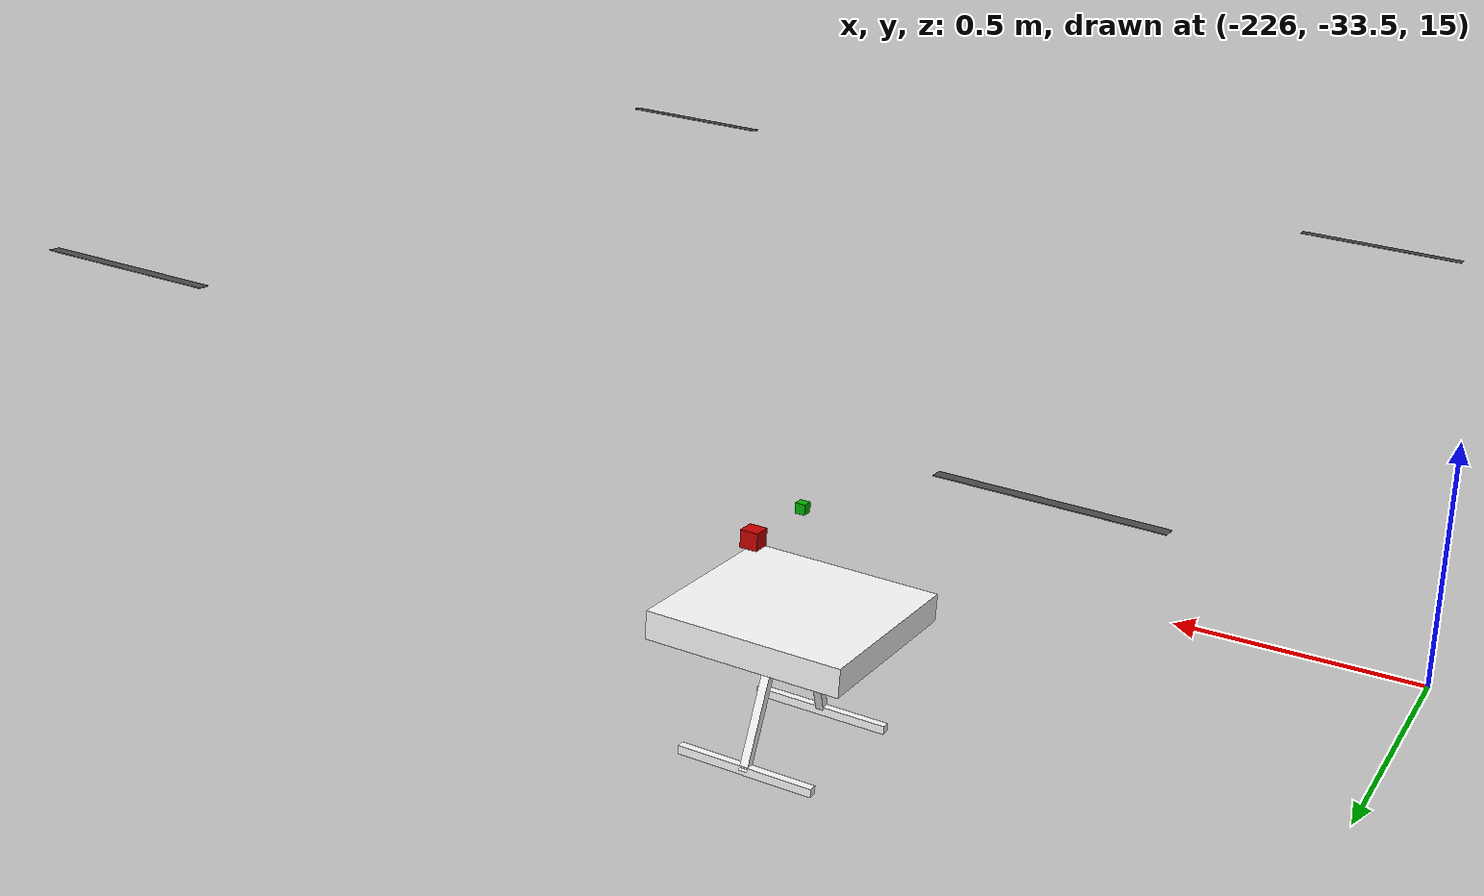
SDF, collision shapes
<?xml version='1.0' encoding='UTF-8'?>
<sdf version="1.9">
  <model name="x500_base_custom">
    <pose>-225.13 -32.65 15.33 0.11 -0.03 0.01</pose>
    <canonical_link>base_link</canonical_link>
    <self_collide>false</self_collide>
    <static>false</static>

    <!-- === BASE LINK (mevcut) === -->
    <link name="base_link">
      <inertial>
        <mass>20.000</mass>
        <inertia>
          <ixx>0.02166666666666667</ixx>
          <ixy>0</ixy>
          <ixz>0</ixz>
          <iyy>0.02166666666666667</iyy>
          <iyz>0</iyz>
          <izz>0.04000000000000001</izz>
        </inertia>
      </inertial>
      <gravity>true</gravity>
      <velocity_decay/>
      <visual name="base_link_visual">
        <pose>0.01 0.016 0 0 0 0</pose>
        <geometry>
          <mesh>
            <scale>0.009 0.013 0.01</scale>
            <uri>model://x500_base_custom/meshes/last.dae</uri>
          </mesh>
        </geometry>
      </visual>

      <!-- motor base görselleri: zaten base_link altında -->
      <visual name="5010_motor_base_0">
        <pose>0.689 0.7535 0.55 0 0 -0.90</pose>
        <geometry>
          <mesh>
            <scale>0.1 0.1 0.1</scale>
            <uri>model://x500_base_custom/meshes/motorbase.dae</uri>
          </mesh>
        </geometry>
      </visual>
      <visual name="5010_motor_base_1">
        <pose>-0.689 0.7535 0.55 0 0 0.90</pose>
        <geometry>
          <mesh>
            <scale>0.1 0.1 0.1</scale>
            <uri>model://x500_base_custom/meshes/motorbase.dae</uri>
          </mesh>
        </geometry>
      </visual>
      <visual name="5010_motor_base_2">
        <pose>0.689 -0.7535 0.55 0 0 -2.10</pose>
        <geometry>
          <mesh>
            <scale>0.1 0.1 0.1</scale>
            <uri>model://x500_base_custom/meshes/motorbase.dae</uri>
          </mesh>
        </geometry>
      </visual>
      <visual name="5010_motor_base_3">
        <pose>-0.689 -0.7535 0.55 0 0 -4.2</pose>
        <geometry>
          <mesh>
            <scale>0.1 0.1 0.1</scale>
            <uri>model://x500_base_custom/meshes/motorbase.dae</uri>
          </mesh>
        </geometry>
      </visual>

      <visual name="NXP_FMUK66_FRONT">
        <pose>0.047 .001 .043 1 0 1.57</pose>
        <cast_shadows>false</cast_shadows>
        <geometry>
          <plane>
            <normal>0 0 1</normal>
            <size>.013 .007</size>
          </plane>
        </geometry>
        <material>
          <diffuse>1.0 1.0 1.0</diffuse>
          <specular>1.0 1.0 1.0</specular>
          <pbr>
            <metal>
              <albedo_map>model://x500_base_custom/materials/textures/nxp.png</albedo_map>
            </metal>
          </pbr>
        </material>
      </visual>
      <visual name="NXP_FMUK66_TOP">
        <pose>-0.023 0 .0515 0 0 -1.57</pose>
        <cast_shadows>false</cast_shadows>
        <geometry>
          <plane>
            <normal>0 0 1</normal>
            <size>.013 .007</size>
          </plane>
        </geometry>
        <material>
          <diffuse>1.0 1.0 1.0</diffuse>
          <specular>1.0 1.0 1.0</specular>
          <pbr>
            <metal>
              <albedo_map>model://x500_base_custom/materials/textures/nxp.png</albedo_map>
            </metal>
          </pbr>
        </material>
      </visual>
      <visual name="RDDRONE_FMUK66_TOP">
        <pose>-.03 0 .0515 0 0 -1.57</pose>
        <cast_shadows>false</cast_shadows>
        <geometry>
          <plane>
            <normal>0 0 1</normal>
            <size>.032 .0034</size>
          </plane>
        </geometry>
        <material>
          <diffuse>1.0 1.0 1.0</diffuse>
          <specular>1.0 1.0 1.0</specular>
          <pbr>
            <metal>
              <albedo_map>model://x500_base_custom/materials/textures/rd.png</albedo_map>
            </metal>
          </pbr>
        </material>
      </visual>

      <!-- base_link collisionlar (mevcut) -->
      <collision name="base_link_collision_0">
        <pose>0 0 .007 0 0 0</pose>
        <geometry>
          <box><size>0.35355339059327373 0.35355339059327373 0.05</size></box>
        </geometry>
        <surface>
          <contact><ode><min_depth>0.001</min_depth><max_vel>0</max_vel></ode></contact>
          <friction><ode/></friction>
        </surface>
      </collision>
      <collision name="base_link_collision_1">
        <pose>0 -0.098 -.123 -0.35 0 0</pose>
        <geometry>
          <box><size>0.015 0.015 0.21</size></box>
        </geometry>
        <surface>
          <contact><ode><min_depth>0.001</min_depth><max_vel>0</max_vel></ode></contact>
          <friction><ode/></friction>
        </surface>
      </collision>
      <collision name="base_link_collision_2">
        <pose>0 0.098 -.123 0.35 0 0</pose>
        <geometry>
          <box><size>0.015 0.015 0.21</size></box>
        </geometry>
        <surface>
          <contact><ode><min_depth>0.001</min_depth><max_vel>0</max_vel></ode></contact>
          <friction><ode/></friction>
        </surface>
      </collision>
      <collision name="base_link_collision_3">
        <pose>0 -0.132 -.2195 0 0 0</pose>
        <geometry>
          <box><size>0.25 0.015 0.015</size></box>
        </geometry>
        <surface>
          <contact><ode><min_depth>0.001</min_depth><max_vel>0</max_vel></ode></contact>
          <friction><ode/></friction>
        </surface>
      </collision>
      <collision name="base_link_collision_4">
        <pose>0 0.132 -.2195 0 0 0</pose>
        <geometry>
          <box><size>0.25 0.015 0.015</size></box>
        </geometry>
        <surface>
          <contact><ode><min_depth>0.001</min_depth><max_vel>0</max_vel></ode></contact>
          <friction><ode/></friction>
        </surface>
      </collision>

      <!-- Sensörler (mevcut) -->
      <sensor name="air_pressure_sensor" type="air_pressure">
        <gz_frame_id>base_link</gz_frame_id>
        <always_on>1</always_on>
        <update_rate>50</update_rate>
        <air_pressure>
          <pressure>
            <noise type="gaussian"><mean>0</mean><stddev>3</stddev></noise>
          </pressure>
        </air_pressure>
      </sensor>

      <sensor name="magnetometer_sensor" type="magnetometer">
        <gz_frame_id>base_link</gz_frame_id>
        <always_on>1</always_on>
        <update_rate>100</update_rate>
        <magnetometer>
          <x><noise type="gaussian"><stddev>0.0001</stddev></noise></x>
          <y><noise type="gaussian"><stddev>0.0001</stddev></noise></y>
          <z><noise type="gaussian"><stddev>0.0001</stddev></noise></z>
        </magnetometer>
      </sensor>

      <sensor name="imu_sensor" type="imu">
        <gz_frame_id>base_link</gz_frame_id>
        <always_on>1</always_on>
        <update_rate>250</update_rate>
        <imu>
          <angular_velocity>
            <x><noise type="gaussian"><mean>0.0</mean><stddev>0.0008726646</stddev></noise></x>
            <y><noise type="gaussian"><mean>0.0</mean><stddev>0.0008726646</stddev></noise></y>
            <z><noise type="gaussian"><mean>0.0</mean><stddev>0.0008726646</stddev></noise></z>
          </angular_velocity>
          <linear_acceleration>
            <x><noise type="gaussian"><mean>0.0</mean><stddev>0.00637</stddev></noise></x>
            <y><noise type="gaussian"><mean>0.0</mean><stddev>0.00637</stddev></noise></y>
            <z><noise type="gaussian"><mean>0.0</mean><stddev>0.00686</stddev></noise></z>
          </linear_acceleration>
        </imu>
      </sensor>

      <sensor name="navsat_sensor" type="navsat">
        <gz_frame_id>base_link</gz_frame_id>
        <always_on>1</always_on>
        <update_rate>30</update_rate>
      </sensor>
    </link>

    <!-- === 2D LiDAR (LaserScan) === -->
    <sensor name="lidar_2d" type="gpu_lidar">
      <pose>0.20 0.00 0.20 0 0 0</pose>
      <update_rate>20</update_rate>
      <topic>/uav/scan</topic>
      <gz_frame_id>lidar_2d</gz_frame_id>
      <lidar>
        <scan>
          <horizontal>
            <samples>720</samples>
            <resolution>1</resolution>
            <min_angle>-3.14159</min_angle>
            <max_angle> 3.14159</max_angle>
          </horizontal>
        </scan>
        <range><min>0.12</min><max>30.0</max><resolution>0.01</resolution></range>
      </lidar>
      <always_on>true</always_on>
      <visualize>true</visualize>
    </sensor>

    <!-- === 3D LiDAR (PointCloud2) === -->
    <sensor name="lidar_3d" type="gpu_lidar">
      <pose>0.15 0.00 0.25 0 0 0</pose>
      <update_rate>10</update_rate>
      <topic>/uav/points</topic>
      <gz_frame_id>lidar_3d</gz_frame_id>
      <lidar>
        <scan>
          <horizontal>
            <samples>1024</samples>
            <resolution>1</resolution>
            <min_angle>-3.14159</min_angle>
            <max_angle> 3.14159</max_angle>
          </horizontal>
          <vertical>
            <samples>32</samples>
            <resolution>1</resolution>
            <min_angle>-0.52</min_angle>
            <max_angle> 0.52</max_angle>
          </vertical>
        </scan>
        <range><min>0.20</min><max>60.0</max><resolution>0.01</resolution></range>
      </lidar>
      <output_type>point_cloud_packed</output_type>
      <always_on>true</always_on>
      <visualize>true</visualize>
    </sensor>

    <!-- === ROTORLAR ve EKLEMLER === -->
    <link name="rotor_0">
      <gravity>true</gravity>
      <self_collide>false</self_collide>
      <velocity_decay/>
      <pose relative_to="base_link">0.689 -0.7535 0.62 0 0 0</pose>
      <inertial>
        <mass>2.800</mass>
        <inertia>
          <ixx>4.294957e-02</ixx>
          <iyy>4.294957e-02</iyy>
          <izz>8.473248e-02</izz>
        </inertia>
      </inertial>
      <visual name="rotor_0_visual">
        <pose>0 0 0 4.71238898 0 0</pose>
        <geometry>
          <mesh>
            <scale>0.8461538461538461 0.8461538461538461 0.8461538461538461</scale>
            <uri>model://x500_base_custom/meshes/4314_CCW.stl</uri>
          </mesh>
        </geometry>
        <material>
          <script>
            <name>Gazebo/DarkGrey</name>
            <uri>file://media/materials/scripts/gazebo.material</uri>
          </script>
        </material>
      </visual>
      <visual name="rotor_0_visual_motor_bell">
        <pose>0 0 -.032 0 0 0</pose>
        <geometry>
          <mesh>
            <scale>0.01 0.01 0.01</scale>
            <uri>model://x500_base_custom/meshes/Untitled.dae</uri>
          </mesh>
        </geometry>
        <material>
          <script>
            <name>Gazebo/DarkGrey</name>
            <uri>file://media/materials/scripts/gazebo.material</uri>
          </script>
        </material>
      </visual>
      <collision name="rotor_0_collision">
        <pose>0 0 0 0 0 0</pose>
        <geometry>
          <box><size>0.2792307692307692 0.016923076923076923 0.0008461538461538462</size></box>
        </geometry>
        <surface>
          <contact><ode><min_depth>0.001</min_depth><max_vel>0</max_vel></ode></contact>
          <friction><ode/></friction>
        </surface>
      </collision>
    </link>
    <joint name="rotor_0_joint" type="revolute">
      <parent>base_link</parent>
      <child>rotor_0</child>
      <axis>
        <xyz>0 0 1</xyz>
        <use_parent_model_frame>true</use_parent_model_frame>
        <limit><lower>-1e+16</lower><upper>1e+16</upper></limit>
        <dynamics><spring_reference>0</spring_reference><spring_stiffness>0</spring_stiffness></dynamics>
      </axis>
    </joint>

    <link name="rotor_1">
      <gravity>true</gravity>
      <self_collide>false</self_collide>
      <velocity_decay/>
      <pose relative_to="base_link">-0.689 0.7535174 0.62 0 0 0</pose>
      <inertial>
        <mass>2.800</mass>
        <inertia>
          <ixx>4.294957e-02</ixx>
          <iyy>4.294957e-02</iyy>
          <izz>8.473248e-02</izz>
        </inertia>
      </inertial>
      <visual name="rotor_1_visual">
        <pose>0 0 0 4.71238898 0 0</pose>
        <geometry>
          <mesh>
            <scale>0.8461538461538461 0.8461538461538461 0.8461538461538461</scale>
            <uri>model://x500_base_custom/meshes/4314_CCW.stl</uri>
          </mesh>
        </geometry>
        <material>
          <script>
            <name>Gazebo/DarkGrey</name>
            <uri>file://media/materials/scripts/gazebo.material</uri>
          </script>
        </material>
      </visual>
      <visual name="rotor_1_visual_motor_top">
        <pose>0 0 -.032 0 0 0</pose>
        <geometry>
          <mesh>
            <scale>0.01 0.01 0.01</scale>
            <uri>model://x500_base_custom/meshes/Untitled.dae</uri>
          </mesh>
        </geometry>
        <material>
          <script>
            <name>Gazebo/DarkGrey</name>
            <uri>file://media/materials/scripts/gazebo.material</uri>
          </script>
        </material>
      </visual>
      <collision name="rotor_1_collision">
        <pose>0 0 0 0 0 0</pose>
        <geometry>
          <box><size>0.2792307692307692 0.016923076923076923 0.0008461538461538462</size></box>
        </geometry>
        <surface>
          <contact><ode><min_depth>0.001</min_depth><max_vel>0</max_vel></ode></contact>
          <friction><ode/></friction>
        </surface>
      </collision>
    </link>
    <joint name="rotor_1_joint" type="revolute">
      <parent>base_link</parent>
      <child>rotor_1</child>
      <axis>
        <xyz>0 0 1</xyz>
        <use_parent_model_frame>true</use_parent_model_frame>
        <limit><lower>-1e+16</lower><upper>1e+16</upper></limit>
        <dynamics><spring_reference>0</spring_reference><spring_stiffness>0</spring_stiffness></dynamics>
      </axis>
    </joint>

    <link name="rotor_2">
      <gravity>true</gravity>
      <self_collide>false</self_collide>
      <velocity_decay/>
      <pose relative_to="base_link">0.689 0.7535 0.62 0 0 0</pose>
      <inertial>
        <mass>2.800</mass>
        <inertia>
          <ixx>4.294957e-02</ixx>
          <iyy>4.294957e-02</iyy>
          <izz>8.473248e-02</izz>
        </inertia>
      </inertial>
      <visual name="rotor_2_visual">
        <pose>0 0 0 4.71238898 0 0</pose>
        <geometry>
          <mesh>
            <scale>0.8461538461538461 0.8461538461538461 0.8461538461538461</scale>
            <uri>model://x500_base_custom/meshes/4314_CW.stl</uri>
          </mesh>
        </geometry>
        <material>
          <script>
            <name>Gazebo/DarkGrey</name>
            <uri>file://media/materials/scripts/gazebo.material</uri>
          </script>
        </material>
      </visual>
      <visual name="rotor_2_visual_motor_top">
        <pose>0 0 -.032 0 0 0</pose>
        <geometry>
          <mesh>
            <scale>0.01 0.01 0.01</scale>
            <uri>model://x500_base_custom/meshes/Untitled.dae</uri>
          </mesh>
        </geometry>
        <material>
          <script>
            <name>Gazebo/DarkGrey</name>
            <uri>file://media/materials/scripts/gazebo.material</uri>
          </script>
        </material>
      </visual>
      <collision name="rotor_2_collision">
        <pose>0 0 0 0 0 0</pose>
        <geometry>
          <box><size>0.2792307692307692 0.016923076923076923 0.0008461538461538462</size></box>
        </geometry>
        <surface>
          <contact><ode><min_depth>0.001</min_depth><max_vel>0</max_vel></ode></contact>
          <friction><ode/></friction>
        </surface>
      </collision>
    </link>
    <joint name="rotor_2_joint" type="revolute">
      <parent>base_link</parent>
      <child>rotor_2</child>
      <axis>
        <xyz>0 0 1</xyz>
        <use_parent_model_frame>true</use_parent_model_frame>
        <limit><lower>-1e+16</lower><upper>1e+16</upper></limit>
        <dynamics><spring_reference>0</spring_reference><spring_stiffness>0</spring_stiffness></dynamics>
      </axis>
    </joint>

    <link name="rotor_3">
      <gravity>true</gravity>
      <self_collide>false</self_collide>
      <velocity_decay/>
      <pose relative_to="base_link">-0.689 -0.7535 0.62 0 0 0</pose>
      <inertial>
        <mass>2.800</mass>
        <inertia>
          <ixx>4.294957e-02</ixx>
          <iyy>4.294957e-02</iyy>
          <izz>8.473248e-02</izz>
        </inertia>
      </inertial>
      <visual name="rotor_3_visual">
        <pose>0 0 0 4.71238898 0 0</pose>
        <geometry>
          <mesh>
            <scale>0.8461538461538461 0.8461538461538461 0.8461538461538461</scale>
            <uri>model://x500_base_custom/meshes/4314_CW.stl</uri>
          </mesh>
        </geometry>
        <material>
          <script>
            <name>Gazebo/DarkGrey</name>
            <uri>file://media/materials/scripts/gazebo.material</uri>
          </script>
        </material>
      </visual>
      <visual name="rotor_3_visual_motor_top">
        <pose>0 0 -.032 0 0 0</pose>
        <geometry>
          <mesh>
            <scale>0.01 0.01 0.01</scale>
            <uri>model://x500_base_custom/meshes/Untitled.dae</uri>
          </mesh>
        </geometry>
        <material>
          <script>
            <name>Gazebo/DarkGrey</name>
            <uri>file://media/materials/scripts/gazebo.material</uri>
          </script>
        </material>
      </visual>
      <collision name="rotor_3_collision">
        <pose>0 0 0 0 0 0</pose>
        <geometry>
          <box><size>0.2792307692307692 0.016923076923076923 0.0008461538461538462</size></box>
        </geometry>
        <surface>
          <contact><ode><min_depth>0.001</min_depth><max_vel>0</max_vel></ode></contact>
          <friction><ode/></friction>
        </surface>
      </collision>
    </link>
    <joint name="rotor_3_joint" type="revolute">
      <parent>base_link</parent>
      <child>rotor_3</child>
      <axis>
        <xyz>0 0 1</xyz>
        <use_parent_model_frame>true</use_parent_model_frame>
        <limit><lower>-1e+16</lower><upper>1e+16</upper></limit>
        <dynamics><spring_reference>0</spring_reference><spring_stiffness>0</spring_stiffness></dynamics>
      </axis>
    </joint>

    <!-- === GERÇEKÇİ YÜK KAYMASI:  X–Y–Z PRİZMATİK ZİNCİRİ === -->
    <link name="payload_carriage">
      <self_collide>false</self_collide>
      <pose relative_to="base_link">0 0 0.20 0 0 0</pose>
      <inertial>
        <mass>0.001</mass>
        <inertia>
          <ixx>1e-6</ixx><iyy>1e-6</iyy><izz>1e-6</izz>
          <ixy>0</ixy><ixz>0</ixz><iyz>0</iyz>
        </inertia>
      </inertial>
      <visual name="carriage_vis">
        <geometry><box><size>0.03 0.03 0.03</size></box></geometry>
        <material><ambient>0 1 0 1</ambient><diffuse>0 0.7 0 1</diffuse></material>
      </visual>
      <collision name="carriage_col">
        <geometry><box><size>0.018 0.018 0.018</size></box></geometry>
        <max_contacts>0</max_contacts>
        <surface><contact><collide_bitmask>0x0000</collide_bitmask></contact></surface>
      </collision>
    </link>

    <link name="payload_y">
      <self_collide>false</self_collide>
      <pose relative_to="base_link">0 0 0.20 0 0 0</pose>
      <inertial>
        <mass>0.001</mass>
        <inertia>
          <ixx>1e-6</ixx><iyy>1e-6</iyy><izz>1e-6</izz>
          <ixy>0</ixy><ixz>0</ixz><iyz>0</iyz>
        </inertia>
      </inertial>
      <visual name="y_vis">
        <geometry><box><size>0.03 0.03 0.03</size></box></geometry>
        <material><ambient>0 0 1 1</ambient><diffuse>0 0 0.8 1</diffuse></material>
      </visual>
      <collision name="y_col">
        <geometry><box><size>0.018 0.018 0.018</size></box></geometry>
        <max_contacts>0</max_contacts>
        <surface><contact><collide_bitmask>0x0000</collide_bitmask></contact></surface>
      </collision>
    </link>

    <link name="payload_mass">
      <self_collide>false</self_collide>
      <pose relative_to="base_link">0 0.16 0.20 0 0 0</pose>
      <inertial>
        <mass>35</mass>
        <inertia>
          <ixx>0.0146</ixx><iyy>0.0146</iyy><izz>0.0146</izz>
          <ixy>0</ixy><ixz>0</ixz><iyz>0</iyz>
        </inertia>
      </inertial>
      <visual name="mass_vis">
        <geometry><box><size>0.05 0.05 0.05</size></box></geometry>
        <material><ambient>1 0 0 1</ambient><diffuse>0.8 0 0 1</diffuse></material>
      </visual>
      <collision name="mass_col">
        <geometry><box><size>0.03 0.03 0.03</size></box></geometry>
        <max_contacts>0</max_contacts>
        <surface><contact><collide_bitmask>0x0000</collide_bitmask></contact></surface>
      </collision>
    </link>

    <!-- X: base_link -> payload_carriage -->
    <joint name="payload_slide_x" type="prismatic">
      <parent>base_link</parent>
      <child>payload_carriage</child>
      <pose>0 0 0 0 0 0</pose>
      <axis>
        <xyz>1 0 0</xyz>
        <use_parent_model_frame>true</use_parent_model_frame>
        <limit><lower>-0.1</lower><upper>0.1</upper><effort>200</effort><velocity>1.0</velocity></limit>
        <dynamics><damping>0.1</damping><friction>0.0</friction></dynamics>
      </axis>
    </joint>

    <!-- Y: payload_carriage -> payload_y -->
    <joint name="payload_slide_y" type="prismatic">
      <parent>payload_carriage</parent>
      <child>payload_y</child>
      <pose>0 0 0 0 0 0</pose>
      <axis>
        <xyz>0 1 0</xyz>
        <use_parent_model_frame>true</use_parent_model_frame>
        <limit><lower>-0.1</lower><upper>0.1</upper><effort>200</effort><velocity>1.0</velocity></limit>
        <dynamics><damping>0.1</damping><friction>0.0</friction></dynamics>
      </axis>
    </joint>

    <!-- Z: payload_y -> payload_mass -->
    <joint name="payload_slide_z" type="prismatic">
      <parent>payload_y</parent>
      <child>payload_mass</child>
      <pose>0 0 0 0 0 0</pose>
      <axis>
        <xyz>0 0 1</xyz>
        <use_parent_model_frame>true</use_parent_model_frame>
        <limit><lower>-0.1</lower><upper>0.1</upper><effort>1000</effort><velocity>2.0</velocity></limit>
        <dynamics><damping>0.1</damping><friction>0.0</friction></dynamics>
      </axis>
    </joint>
  </model>
</sdf>
